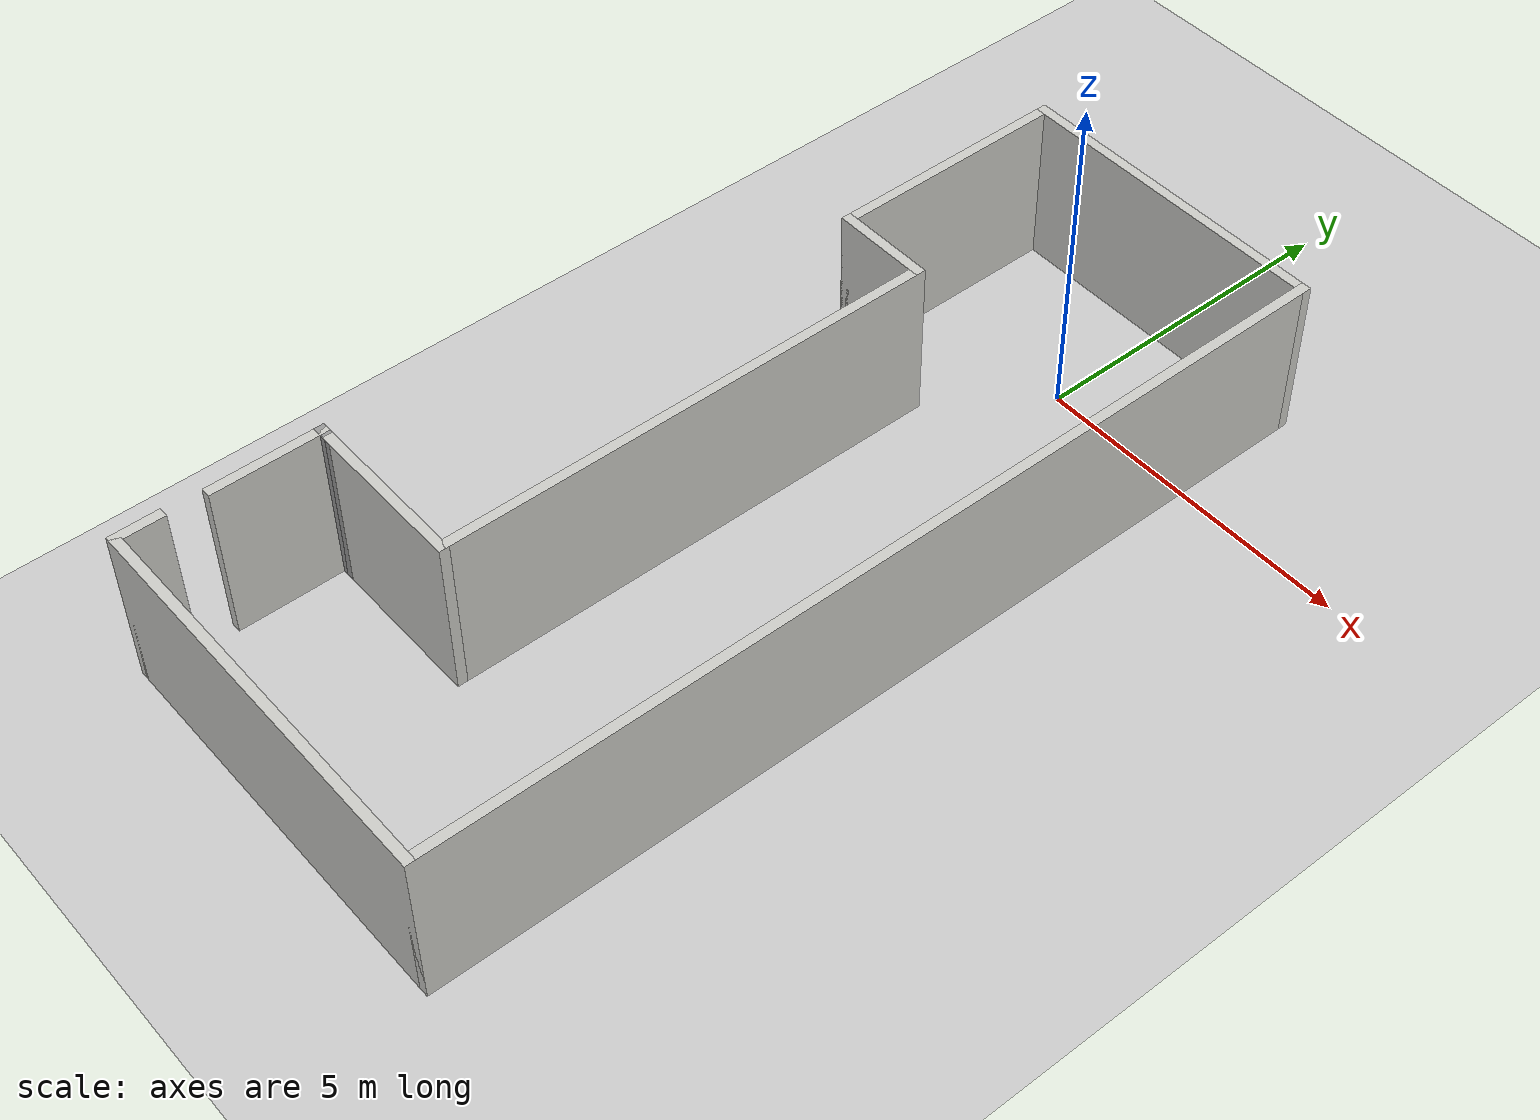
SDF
<sdf version="1.7">
 <world name="default">
  <light name="sun" type="directional">
   <pose>0 0 10 0 -0 0</pose>
   <diffuse>0.8 0.8 0.8 1</diffuse>
   <specular>0.2 0.2 0.2 1</specular>
   <attenuation>
    <range>1000</range>
    <constant>0.9</constant>
    <linear>0.01</linear>
    <quadratic>0.001</quadratic>
   </attenuation>
   <direction>-0.5 0.1 -0.9</direction>
   <spot><inner_angle>0</inner_angle><outer_angle>0</outer_angle><falloff>0</falloff></spot>
  </light>
  <model name="ground_plane">
   <static>1</static>
   <link name="link">
    <collision name="collision">
     <geometry><plane><normal>0 0 1</normal><size>100 100</size></plane></geometry>
     <surface>
      <contact><collide_bitmask>65535</collide_bitmask></contact>
      <friction><ode><mu>100</mu><mu2>50</mu2></ode></friction>
     </surface>
    </collision>
    <visual name="visual">
     <cast_shadows>0</cast_shadows>
     <geometry><plane><normal>0 0 1</normal><size>100 100</size></plane></geometry>
     <material>
      <script><uri>file://media/materials/scripts/gazebo.material</uri><name>Gazebo/Grey</name></script>
     </material>
    </visual>
   </link>
  </model>
  <gravity>0 0 -9.8</gravity>
  <magnetic_field>6e-06 2.3e-05 -4.2e-05</magnetic_field>
  <atmosphere type="adiabatic"/>
  <physics type="ode">
   <max_step_size>0.001</max_step_size>
   <real_time_factor>1</real_time_factor>
   <real_time_update_rate>1000</real_time_update_rate>
  </physics>
  <scene><ambient>0.4 0.4 0.4 1</ambient><background>0.7 0.7 0.7 1</background><shadows>1</shadows></scene>
  <spherical_coordinates>
   <surface_model>EARTH_WGS84</surface_model>
   <latitude_deg>0</latitude_deg>
   <longitude_deg>0</longitude_deg>
   <elevation>0</elevation>
   <heading_deg>0</heading_deg>
  </spherical_coordinates>
  <model name="longC-shaped-room">
   <pose>-0.761805 -5.09129 0 0 -0 0</pose>
   <link name="Wall_0">
    <collision name="Wall_0_Collision">
     <geometry><box><size>0.75 0.15 2.5</size></box></geometry>
     <pose>0 0 1.25 0 -0 0</pose>
    </collision>
    <visual name="Wall_0_Visual">
     <pose>0 0 1.25 0 -0 0</pose>
     <geometry><box><size>0.75 0.15 2.5</size></box></geometry>
     <material>
      <script><uri>file://media/materials/scripts/gazebo.material</uri><name>Gazebo/CeilingTiled</name></script>
      <ambient>0.435294 0.796078 0.67451 1</ambient>
     </material>
     <meta><layer>0</layer></meta>
    </visual>
    <pose>-3.05 -6.75 0 0 -0 -1.5708</pose>
   </link>
   <link name="Wall_1">
    <collision name="Wall_1_Collision">
     <geometry><box><size>6.25 0.15 2.5</size></box></geometry>
     <pose>0 0 1.25 0 -0 0</pose>
    </collision>
    <visual name="Wall_1_Visual">
     <pose>0 0 1.25 0 -0 0</pose>
     <geometry><box><size>6.25 0.15 2.5</size></box></geometry>
     <material>
      <script><uri>file://media/materials/scripts/gazebo.material</uri><name>Gazebo/CeilingTiled</name></script>
      <ambient>0.435294 0.796078 0.67451 1</ambient>
     </material>
     <meta><layer>0</layer></meta>
    </visual>
    <pose>-0 -7.05 0 0 -0 0</pose>
   </link>
   <link name="Wall_10">
    <collision name="Wall_10_Collision">
     <geometry><box><size>1.75 0.15 2.5</size></box></geometry>
     <pose>0 0 1.25 0 -0 0</pose>
    </collision>
    <visual name="Wall_10_Visual">
     <pose>0 0 1.25 0 -0 0</pose>
     <geometry><box><size>1.75 0.15 2.5</size></box></geometry>
     <material>
      <script><uri>file://media/materials/scripts/gazebo.material</uri><name>Gazebo/CeilingTiled</name></script>
      <ambient>0.435294 0.796078 0.67451 1</ambient>
     </material>
     <meta><layer>0</layer></meta>
    </visual>
    <pose>-3 -4.95 0 0 -0 -1.5708</pose>
   </link>
   <link name="Wall_2">
    <collision name="Wall_2_Collision">
     <geometry><box><size>14.25 0.15 2.5</size></box></geometry>
     <pose>0 0 1.25 0 -0 0</pose>
    </collision>
    <visual name="Wall_2_Visual">
     <pose>0 0 1.25 0 -0 0</pose>
     <geometry><box><size>14.25 0.15 2.5</size></box></geometry>
     <material>
      <script><uri>file://media/materials/scripts/gazebo.material</uri><name>Gazebo/CeilingTiled</name></script>
      <ambient>0.435294 0.796078 0.67451 1</ambient>
     </material>
     <meta><layer>0</layer></meta>
    </visual>
    <pose>3.05 0 0 0 -0 1.5708</pose>
   </link>
   <link name="Wall_3">
    <collision name="Wall_3_Collision">
     <geometry><box><size>5 0.15 2.5</size></box></geometry>
     <pose>0 0 1.25 0 -0 0</pose>
    </collision>
    <visual name="Wall_3_Visual">
     <pose>0 0 1.25 0 -0 0</pose>
     <geometry><box><size>5 0.15 2.5</size></box></geometry>
     <material>
      <script><uri>file://media/materials/scripts/gazebo.material</uri><name>Gazebo/CeilingTiled</name></script>
      <ambient>0.435294 0.796078 0.67451 1</ambient>
     </material>
     <meta><layer>0</layer></meta>
    </visual>
    <pose>0.625 7.05 0 0 -0 3.14159</pose>
   </link>
   <link name="Wall_4">
    <collision name="Wall_4_Collision">
     <geometry><box><size>3.75 0.15 2.5</size></box></geometry>
     <pose>0 0 1.25 0 -0 0</pose>
    </collision>
    <visual name="Wall_4_Visual">
     <pose>0 0 1.25 0 -0 0</pose>
     <geometry><box><size>3.75 0.15 2.5</size></box></geometry>
     <material>
      <script><uri>file://media/materials/scripts/gazebo.material</uri><name>Gazebo/CeilingTiled</name></script>
      <ambient>0.435294 0.796078 0.67451 1</ambient>
     </material>
     <meta><layer>0</layer></meta>
    </visual>
    <pose>-1.8 5.25 0 0 -0 -1.5708</pose>
   </link>
   <link name="Wall_5">
    <collision name="Wall_5_Collision">
     <geometry><box><size>1.5 0.15 2.5</size></box></geometry>
     <pose>0 0 1.25 0 -0 0</pose>
    </collision>
    <visual name="Wall_5_Visual">
     <pose>0 0 1.25 0 -0 0</pose>
     <geometry><box><size>1.5 0.15 2.5</size></box></geometry>
     <material>
      <script><uri>file://media/materials/scripts/gazebo.material</uri><name>Gazebo/CeilingTiled</name></script>
      <ambient>0.435294 0.796078 0.67451 1</ambient>
     </material>
     <meta><layer>0</layer></meta>
    </visual>
    <pose>-1.125 3.45 0 0 -0 0</pose>
   </link>
   <link name="Wall_6">
    <collision name="Wall_6_Collision">
     <geometry><box><size>7.75 0.15 2.5</size></box></geometry>
     <pose>0 0 1.25 0 -0 0</pose>
    </collision>
    <visual name="Wall_6_Visual">
     <pose>0 0 1.25 0 -0 0</pose>
     <geometry><box><size>7.75 0.15 2.5</size></box></geometry>
     <material>
      <script><uri>file://media/materials/scripts/gazebo.material</uri><name>Gazebo/CeilingTiled</name></script>
      <ambient>0.435294 0.796078 0.67451 1</ambient>
     </material>
     <meta><layer>0</layer></meta>
    </visual>
    <pose>-0.45 -0.35 0 0 -0 -1.5708</pose>
   </link>
   <link name="Wall_7">
    <collision name="Wall_7_Collision">
     <geometry><box><size>2.5 0.15 2.5</size></box></geometry>
     <pose>0 0 1.25 0 -0 0</pose>
    </collision>
    <visual name="Wall_7_Visual">
     <pose>0 0 1.25 0 -0 0</pose>
     <geometry><box><size>2.5 0.15 2.5</size></box></geometry>
     <material>
      <script><uri>file://media/materials/scripts/gazebo.material</uri><name>Gazebo/CeilingTiled</name></script>
      <ambient>0.435294 0.796078 0.67451 1</ambient>
     </material>
     <meta><layer>0</layer></meta>
    </visual>
    <pose>-1.625 -4.15 0 0 -0 3.14159</pose>
   </link>
   <link name="Wall_8">
    <collision name="Wall_8_Collision">
     <geometry><box><size>0.25 0.15 2.5</size></box></geometry>
     <pose>0 0 1.25 0 -0 0</pose>
    </collision>
    <visual name="Wall_8_Visual">
     <pose>0 0 1.25 0 -0 0</pose>
     <geometry><box><size>0.25 0.15 2.5</size></box></geometry>
     <material>
      <script><uri>file://media/materials/scripts/gazebo.material</uri><name>Gazebo/Grey</name></script>
      <ambient>1 1 1 1</ambient>
     </material>
     <meta><layer>0</layer></meta>
    </visual>
    <pose>-2.85 -4.15 0 0 -0 3.14159</pose>
   </link>
   <link name="Wall_9">
    <collision name="Wall_9_Collision">
     <geometry><box><size>0.25 0.15 2.5</size></box></geometry>
     <pose>0 0 1.25 0 -0 0</pose>
    </collision>
    <visual name="Wall_9_Visual">
     <pose>0 0 1.25 0 -0 0</pose>
     <geometry><box><size>0.25 0.15 2.5</size></box></geometry>
     <material>
      <script><uri>file://media/materials/scripts/gazebo.material</uri><name>Gazebo/Grey</name></script>
      <ambient>1 1 1 1</ambient>
     </material>
     <meta><layer>0</layer></meta>
    </visual>
    <pose>-2.95 -4.15 0 0 -0 3.14159</pose>
   </link>
   <static>1</static>
  </model>
 </world>
</sdf>
